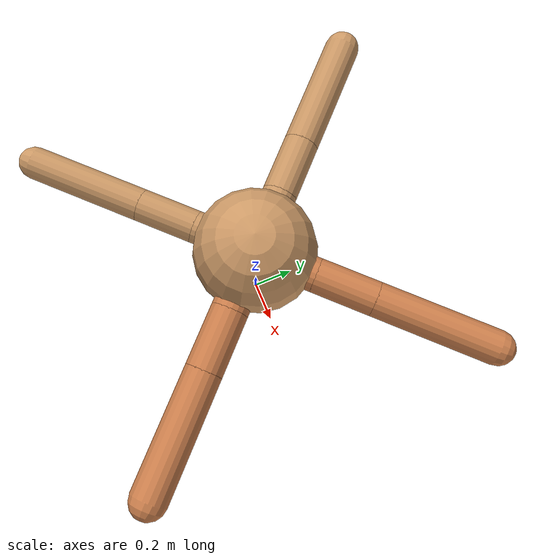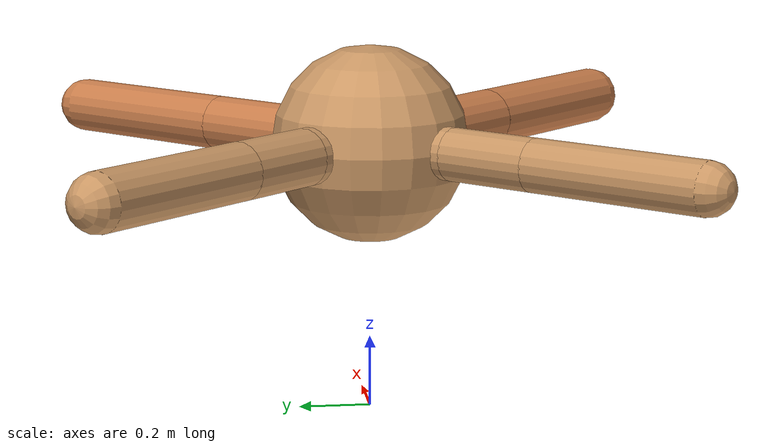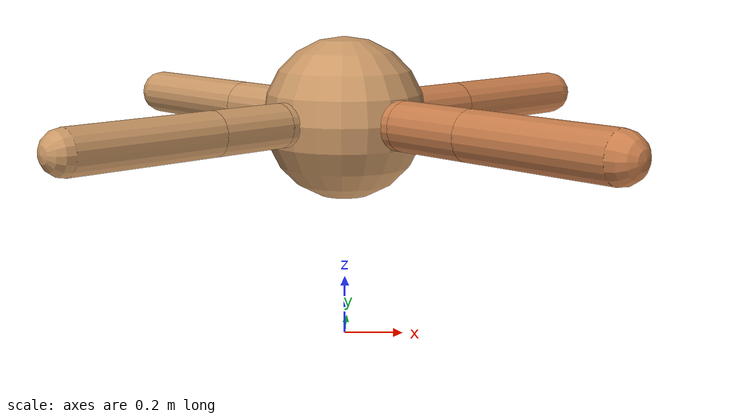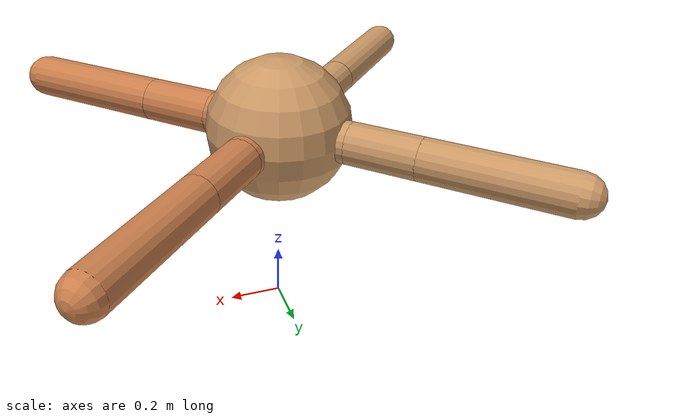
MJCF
<?xml version="1.0" ?>
<mujoco model="ant">

	<compiler angle="degree" coordinate="local" inertiafromgeom="true"/>

	<option integrator="RK4" timestep="0.01"/>

	<custom>

		<numeric data="0.0 0.0 0.55 1.0 0.0 0.0 0.0 0.0 1.0 0.0 -1.0 0.0 -1.0 0.0 1.0" name="init_qpos"/>

	</custom>

	<default>

		<joint armature="1" damping="1" limited="true"/>

		<geom conaffinity="0" condim="3" density="5.0" friction="1.5 0.1 0.1" margin="0.01" rgba="0.8 0.6 0.4 1"/>

	</default>

	<worldbody>

		<body name="torso" pos="0 0 0.75">

			<geom name="torso_geom" pos="0 0 0" size="0.27393423578387316" type="sphere"/>

			<!--joint armature="0" damping="0" limited="false" margin="0.01" name="root" pos="0 0 0" type="free"/-->

			<body name="front_left_leg" pos="0 0 0">

				<geom fromto="0 0 0 0.2 0.2 0" name="aux_1_geom" size="0.07745382312128313" type="capsule" rgba=".8 .5 .3 1"/>

				<body name="aux_1" pos="0.2 0.2 0">

					<joint axis="0 0 1" name="hip_1" pos="0.0 0.0 0.0" range="-40 40" type="hinge"/>

					<geom fromto="0 0 0 0.19186113173867822 0.19186113173867822 0" name="left_leg_geom" size="0.07745382312128313" type="capsule" rgba=".8 .5 .3 1"/>

					<body pos="0.19186113173867822 0.19186113173867822 0" name="front_left_foot">

						<joint axis="-1 1 0" name="ankle_1" pos="0.0 0.0 0.0" range="30 100" type="hinge"/>

						<geom fromto="0 0 0 0.38372226347735644 0.38372226347735644 0" name="left_ankle_geom" size="0.07745382312128313" type="capsule" rgba=".8 .5 .3 1"/>

					</body>

				</body>

			</body>

			<body name="front_right_leg" pos="0 0 0">

				<geom fromto="0 0 0 -0.2 0.2 0" name="aux_2_geom" size="0.07858110595977372" type="capsule"/>

				<body name="aux_2" pos="-0.2 0.2 0">

					<joint axis="0 0 1" name="hip_2" pos="0.0 0.0 0.0" range="-40 40" type="hinge"/>

					<geom fromto="0 0 0 -0.18344033808961113 0.18344033808961113 0" name="right_leg_geom" size="0.07858110595977372" type="capsule"/>

					<body pos="-0.18344033808961113 0.18344033808961113 0" name="front_right_foot">

						<joint axis="1 1 0" name="ankle_2" pos="0.0 0.0 0.0" range="-100 -30" type="hinge"/>

						<geom fromto="0 0 0 -0.36688067617922226 0.36688067617922226 0" name="right_ankle_geom" size="0.07858110595977372" type="capsule"/>

					</body>

				</body>

			</body>

			<body name="left_back_leg" pos="0 0 0">

				<geom fromto="0 0 0 -0.2 -0.2 0" name="aux_3_geom" size="0.07268780488732929" type="capsule"/>

				<body name="aux_3" pos="-0.2 -0.2 0">

					<joint axis="0 0 1" name="hip_3" pos="0.0 0.0 0.0" range="-40 40" type="hinge"/>

					<geom fromto="0 0 0 -0.1849952470170283 -0.1849952470170283 0" name="back_leg_geom" size="0.07268780488732929" type="capsule"/>

					<body pos="-0.1849952470170283 -0.1849952470170283 0" name="left_back_foot">

						<joint axis="-1 1 0" name="ankle_3" pos="0.0 0.0 0.0" range="-100 -30" type="hinge"/>

						<geom fromto="0 0 0 -0.3699904940340566 -0.3699904940340566 0" name="third_ankle_geom" size="0.07268780488732929" type="capsule"/>

					</body>

				</body>

			</body>

			<body name="right_back_leg" pos="0 0 0">

				<geom fromto="0 0 0 0.2 -0.2 0" name="aux_4_geom" size="0.0826385300478717" type="capsule" rgba=".8 .5 .3 1"/>

				<body name="aux_4" pos="0.2 -0.2 0">

					<joint axis="0 0 1" name="hip_4" pos="0.0 0.0 0.0" range="-40 40" type="hinge"/>

					<geom fromto="0 0 0 0.19454389830024996 -0.19454389830024996 0" name="rightback_leg_geom" size="0.0826385300478717" type="capsule" rgba=".8 .5 .3 1"/>

					<body pos="0.19454389830024996 -0.19454389830024996 0" name="right_back_foot">

						<joint axis="1 1 0" name="ankle_4" pos="0.0 0.0 0.0" range="30 100" type="hinge"/>

						<geom fromto="0 0 0 0.3890877966004999 -0.3890877966004999 0" name="fourth_ankle_geom" size="0.0826385300478717" type="capsule" rgba=".8 .5 .3 1"/>

					</body>

				</body>

			</body>

		</body>

	</worldbody>

	<actuator>

		<motor ctrllimited="true" ctrlrange="-1.0 1.0" joint="hip_4" gear="150"/>

		<motor ctrllimited="true" ctrlrange="-1.0 1.0" joint="ankle_4" gear="150"/>

		<motor ctrllimited="true" ctrlrange="-1.0 1.0" joint="hip_1" gear="150"/>

		<motor ctrllimited="true" ctrlrange="-1.0 1.0" joint="ankle_1" gear="150"/>

		<motor ctrllimited="true" ctrlrange="-1.0 1.0" joint="hip_2" gear="150"/>

		<motor ctrllimited="true" ctrlrange="-1.0 1.0" joint="ankle_2" gear="150"/>

		<motor ctrllimited="true" ctrlrange="-1.0 1.0" joint="hip_3" gear="150"/>

		<motor ctrllimited="true" ctrlrange="-1.0 1.0" joint="ankle_3" gear="150"/>

	</actuator>

</mujoco>
